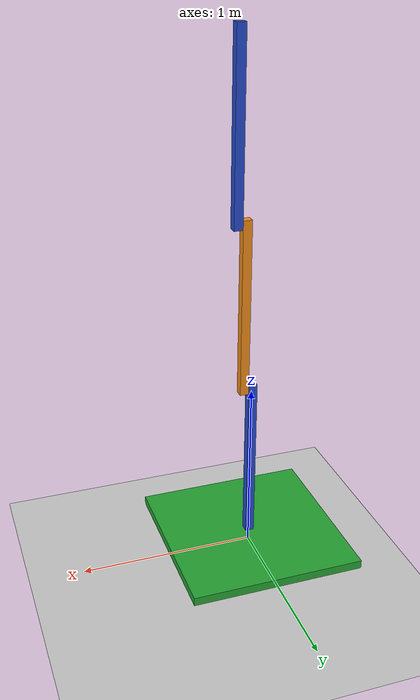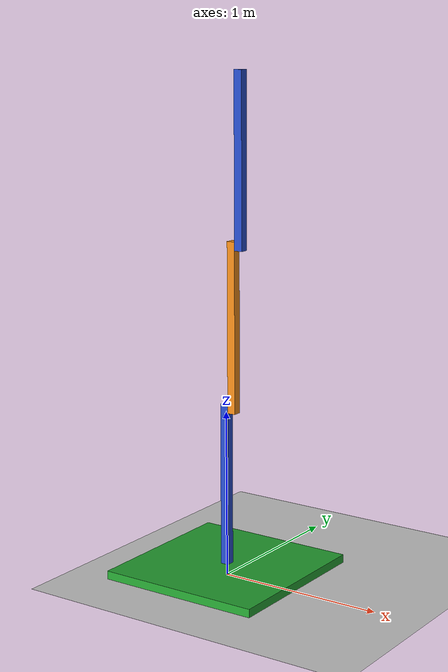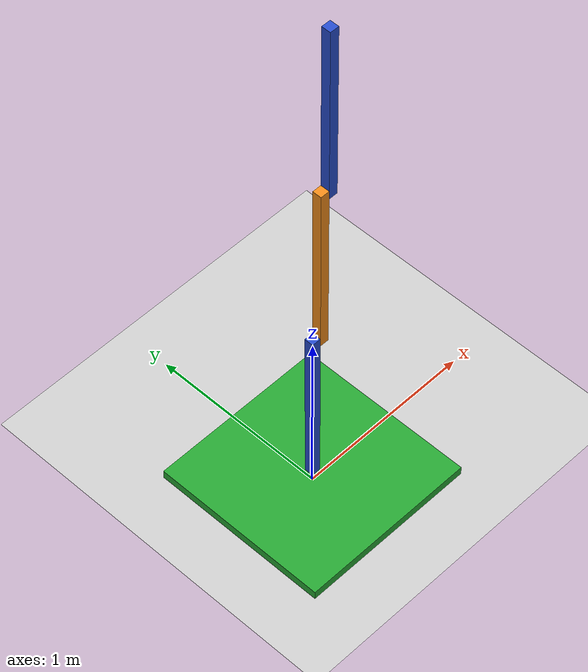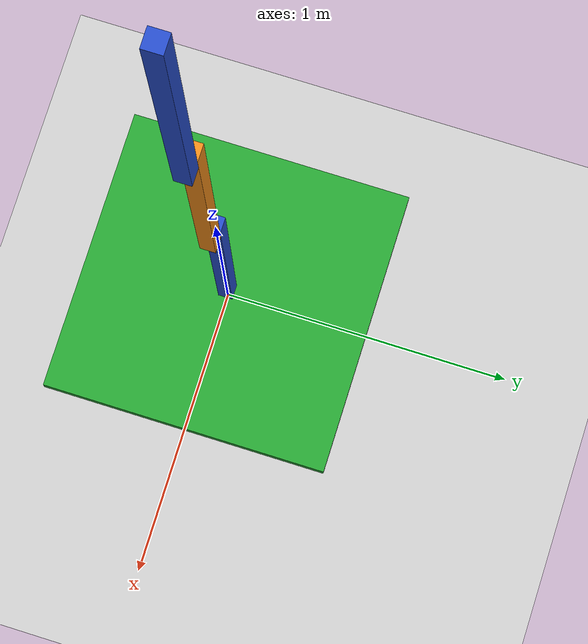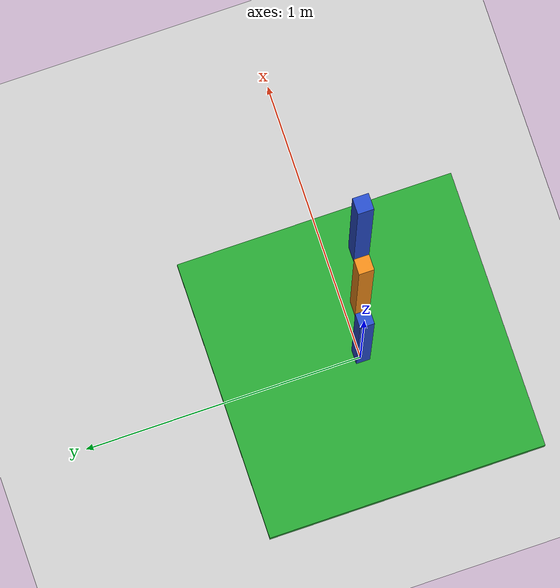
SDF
<sdf version="1.7">
 <world name="default">
  <light name="sun" type="directional">
   <pose>0 0 10 0 -0 0</pose>
   <diffuse>0.8 0.8 0.8 1</diffuse>
   <specular>0.2 0.2 0.2 1</specular>
   <attenuation>
    <range>1000</range>
    <constant>0.9</constant>
    <linear>0.01</linear>
    <quadratic>0.001</quadratic>
   </attenuation>
   <direction>-0.5 0.1 -0.9</direction>
   <spot><inner_angle>0</inner_angle><outer_angle>0</outer_angle><falloff>0</falloff></spot>
  </light>
  <model name="ground_plane">
   <static>1</static>
   <link name="link">
    <collision name="collision">
     <geometry><plane><normal>0 0 1</normal><size>100 100</size></plane></geometry>
     <surface>
      <contact><collide_bitmask>65535</collide_bitmask></contact>
      <friction><ode><mu>100</mu><mu2>50</mu2></ode></friction>
     </surface>
    </collision>
    <visual name="visual">
     <cast_shadows>0</cast_shadows>
     <geometry><plane><normal>0 0 1</normal><size>100 100</size></plane></geometry>
     <material>
      <script><uri>file://media/materials/scripts/gazebo.material</uri><name>Gazebo/Grey</name></script>
     </material>
    </visual>
   </link>
  </model>
  <gravity>0 0 -9.8</gravity>
  <magnetic_field>6e-06 2.3e-05 -4.2e-05</magnetic_field>
  <atmosphere type="adiabatic"/>
  <physics type="ode">
   <max_step_size>0.001</max_step_size>
   <real_time_factor>1</real_time_factor>
   <real_time_update_rate>1000</real_time_update_rate>
  </physics>
  <scene><ambient>0.4 0.4 0.4 1</ambient><background>0.7 0.7 0.7 1</background><shadows>1</shadows></scene>
  <audio><device>default</device></audio>
  <spherical_coordinates>
   <surface_model>EARTH_WGS84</surface_model>
   <latitude_deg>0</latitude_deg>
   <longitude_deg>0</longitude_deg>
   <elevation>0</elevation>
   <heading_deg>0</heading_deg>
  </spherical_coordinates>
  <model name="my_bot">
   <joint name="base_joint" type="fixed">
    <pose relative_to="__model__">0 0 0 0 -0 0</pose>
    <parent>world</parent>
    <child>base_link</child>
   </joint>
   <link name="base_link">
    <pose relative_to="base_joint">0 0 0 0 -0 0</pose>
    <inertial>
     <pose>0 0 0.07 0 -0 0</pose>
     <mass>12.5</mass>
     <inertia><ixx>2.38354</ixx><ixy>0</ixy><ixz>0</ixz><iyy>6.39135</iyy><iyz>0</iyz><izz>8.51302</izz></inertia>
    </inertial>
    <visual name="base_link_visual">
     <pose>0 0 0.05 0 -0 0</pose>
     <geometry><box><size>1 1 0.05</size></box></geometry>
     <material>
      <script><name>Gazebo/Green</name><uri>file://media/materials/scripts/gazebo.material</uri></script>
     </material>
    </visual>
    <visual name="base_link_fixed_joint_lump__Link_0_visual_1">
     <pose>0 0 0.55 0 -0 0</pose>
     <geometry><box><size>0.05 0.05 1</size></box></geometry>
     <material>
      <script><name>Gazebo/Blue</name><uri>file://media/materials/scripts/gazebo.material</uri></script>
     </material>
    </visual>
   </link>
   <joint name="Joint_1" type="revolute">
    <pose relative_to="base_link">0.05 0 1 0 -0 0</pose>
    <parent>base_link</parent>
    <child>Link_1</child>
    <axis>
     <xyz>1 0 0</xyz>
     <limit><lower>-3.14</lower><upper>3.14</upper><effort>10</effort><velocity>10</velocity></limit>
     <dynamics><spring_reference>0</spring_reference><spring_stiffness>0</spring_stiffness></dynamics>
    </axis>
   </joint>
   <link name="Link_1">
    <pose relative_to="Joint_1">0 0 0 0 -0 0</pose>
    <inertial>
     <pose>0 0 0.5 0 -0 0</pose>
     <mass>1</mass>
     <inertia>
      <ixx>0.0858333</ixx>
      <ixy>0</ixy>
      <ixz>0</ixz>
      <iyy>0.0858333</iyy>
      <iyz>0</iyz>
      <izz>0.005</izz>
     </inertia>
    </inertial>
    <visual name="Link_1_visual">
     <pose>0 0 0.5 0 -0 0</pose>
     <geometry><box><size>0.05 0.05 1</size></box></geometry>
     <material>
      <script><name>Gazebo/Orange</name><uri>file://media/materials/scripts/gazebo.material</uri></script>
     </material>
    </visual>
   </link>
   <joint name="Joint_2" type="revolute">
    <pose relative_to="Link_1">0.05 0 0.95 0 -0 0</pose>
    <parent>Link_1</parent>
    <child>Link_2</child>
    <axis>
     <xyz>1 0 0</xyz>
     <limit><lower>-3.14</lower><upper>3.14</upper><effort>10</effort><velocity>10</velocity></limit>
     <dynamics><spring_reference>0</spring_reference><spring_stiffness>0</spring_stiffness></dynamics>
    </axis>
   </joint>
   <link name="Link_2">
    <pose relative_to="Joint_2">0 0 0 0 -0 0</pose>
    <inertial>
     <pose>0 0 0.5 0 -0 0</pose>
     <mass>1</mass>
     <inertia>
      <ixx>0.0858333</ixx>
      <ixy>0</ixy>
      <ixz>0</ixz>
      <iyy>0.0858333</iyy>
      <iyz>0</iyz>
      <izz>0.005</izz>
     </inertia>
    </inertial>
    <visual name="Link_2_visual">
     <pose>0 0 0.5 0 -0 0</pose>
     <geometry><box><size>0.05 0.05 1</size></box></geometry>
     <material>
      <script><name>Gazebo/Blue</name><uri>file://media/materials/scripts/gazebo.material</uri></script>
     </material>
    </visual>
   </link>
   <static>0</static>
   <plugin name="gazebo_ros2_control" filename="libgazebo_ros2_control.so">
    <parameters>$(find urdf_example)/description/my_controllers.yaml</parameters>
   </plugin>
  </model>
 </world>
</sdf>
